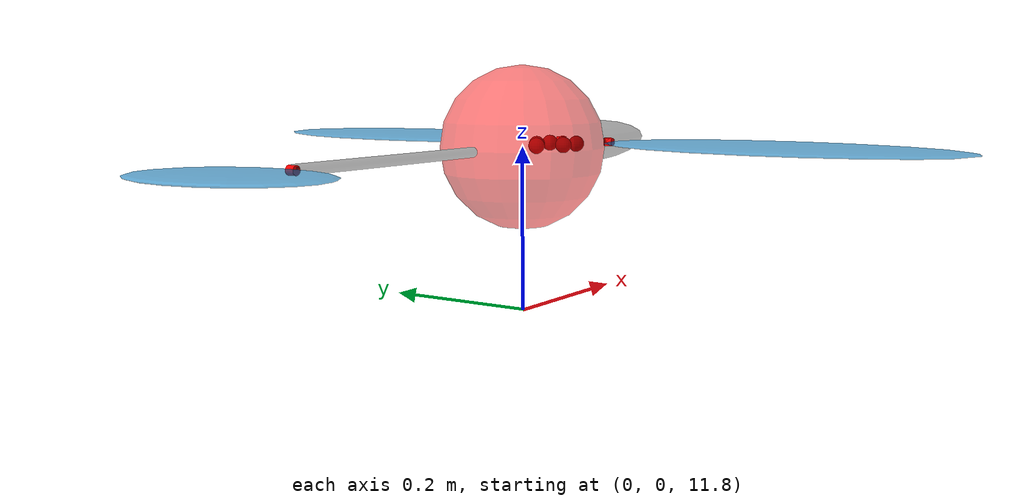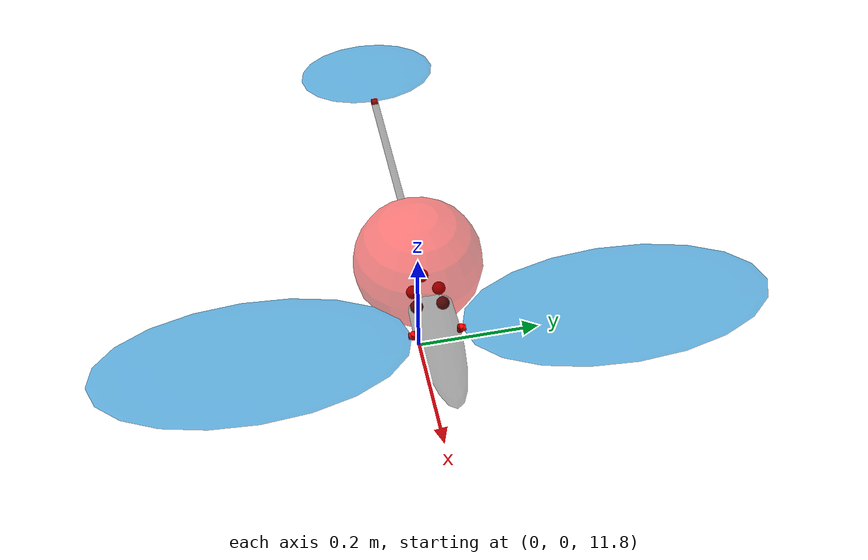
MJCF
<mujoco model="Ornithopter_UnB_Final">
    <compiler angle="degree" coordinate="local" inertiafromgeom="true"/>

    <statistic center="0 0 12" extent="2"/>

    <option timestep="0.001" integrator="RK4" gravity="0 0 -9.81" density="1.225" viscosity="0.000018">
        <flag energy="enable"/>
    </option>

    <asset>
        <material name="carbon_fiber" rgba="0.1 0.1 0.1 0.4"/>
        <material name="wing_mylar" rgba="0 0.5 0.8 0.6"/>
        <material name="joint_visual" rgba="1 0 0 1"/>
        <material name="motor_internal" rgba="0.5 0 0 1"/>
    </asset>

    <worldbody>
        <light diffuse=".5 .5 .5" pos="0 0 3" dir="0 0 -1"/>
        <geom type="plane" size="100 100 0.1" rgba=".9 .9 .9 1"/>

        <body name="target" mocap="true" pos="0 0 12">
            <geom type="sphere" size="0.1" rgba="1 0 0 0.5" contype="0" conaffinity="0"/>
        </body>

        <!-- CORPO PRINCIPAL -->
        <body name="torso" pos="0 0 12">
            <freejoint name="root"/>

            <!-- Fuselagem Principal (GeoGebra): 255g total, motores inclusos aqui -->
            <geom name="fuselagem" type="ellipsoid" fluidshape="ellipsoid" pos="0.12995 0 0" size="0.1565 0.035 0.028" mass="0.210" material="carbon_fiber"/>

            <!-- Massas dos Motores (9g cada) posicionadas internamente para ajuste de CG -->
            <geom name="m_flap_l_mass" type="sphere" pos="0.09 0.02 0" size="0.01" mass="0.009" material="motor_internal"/>
            <geom name="m_flap_r_mass" type="sphere" pos="0.09 -0.02 0" size="0.01" mass="0.009" material="motor_internal"/>
            <geom name="m_pitch_l_mass" type="sphere" pos="0.06 0.02 0" size="0.01" mass="0.009" material="motor_internal"/>
            <geom name="m_pitch_r_mass" type="sphere" pos="0.06 -0.02 0" size="0.01" mass="0.009" material="motor_internal"/>
            <geom name="m_tail_mass" type="sphere" pos="0.03 0 0" size="0.01" mass="0.009" material="motor_internal"/>

            <!-- Tubo de Cauda (4g) -->
            <geom name="tail_tube" type="cylinder" fromto="-0.02197 0 0 -0.37657 0 0" size="0.006" mass="0.004" material="carbon_fiber"/>

            <!-- ASA ESQUERDA -->
            <body name="asa_esq_flap" pos="0.14325 0.035 0">
                <joint name="q1_flap_esq" type="hinge" axis="1 0 0" range="-45 45" damping="0.1"/>
                <!-- Cilindro de placeholder para satisfazer mjMINVAL -->
                <geom type="cylinder" size="0.005 0.005" mass="0.0001" material="joint_visual"/>

                <body name="asa_esq_pitch" pos="0 0.00249 0">
                    <joint name="q2_pitch_esq" type="hinge" axis="0 1 0" range="-25 25" damping="0.05"/>
                    <geom type="cylinder" size="0.005 0.005" mass="0.0001" material="joint_visual" euler="90 0 0"/>

                    <body name="asa_esq">
                        <geom name="wing_l" type="ellipsoid" fluidshape="ellipsoid" pos="0 0.23625 0" size="0.1139 0.2362 0.005" mass="0.020" material="wing_mylar" fluidcoef="0.2 0.12 1.5 3.14 1.0"/>
                    </body>
                </body>
            </body>

            <!-- ASA DIREITA -->
            <body name="asa_dir_flap" pos="0.14325 -0.035 0">
                <joint name="q3_flap_dir" type="hinge" axis="1 0 0" range="-45 45" damping="0.1"/>
                <geom type="cylinder" size="0.005 0.005" mass="0.0001" material="joint_visual"/>

                <body name="asa_dir_pitch" pos="0 -0.00249 0">
                    <joint name="q4_pitch_dir" type="hinge" axis="0 1 0" range="-25 25" damping="0.05"/>
                    <geom type="cylinder" size="0.005 0.005" mass="0.0001" material="joint_visual" euler="90 0 0"/>

                    <body name="asa_dir">
                        <geom name="wing_r" type="ellipsoid" fluidshape="ellipsoid" pos="0 -0.23625 0" size="0.1139 0.2362 0.005" mass="0.020" material="wing_mylar" fluidcoef="0.2 0.12 1.5 3.14 1.0"/>
                    </body>
                </body>
            </body>

            <!-- CAUDA -->
            <body name="cauda_pitch" pos="-0.37657 0 0">
                <joint name="q5_pitch_tail" type="hinge" axis="0 1 0" range="-35 35" damping="0.1"/>
                <geom type="cylinder" size="0.005 0.005" mass="0.0001" material="joint_visual" euler="90 0 0"/>

                <body name="cauda">
                    <geom name="tail_geom" type="ellipsoid" fluidshape="ellipsoid" pos="-0.07553 0 0" size="0.07553 0.1133 0.005" mass="0.009" material="wing_mylar" fluidcoef="0.2 0.12 1.5 3.14 1.0"/>
                </body>
            </body>
        </body>
    </worldbody>

    <actuator>
        <position name="motor_q1" joint="q1_flap_esq" kp="10" ctrllimited="true" ctrlrange="-45 45"/>
        <position name="motor_q2" joint="q2_pitch_esq" kp="5" ctrllimited="true" ctrlrange="-25 25"/>
        <position name="motor_q3" joint="q3_flap_dir" kp="10" ctrllimited="true" ctrlrange="-45 45"/>
        <position name="motor_q4" joint="q4_pitch_dir" kp="5" ctrllimited="true" ctrlrange="-25 25"/>
        <position name="motor_q5" joint="q5_pitch_tail" kp="100" ctrllimited="true" ctrlrange="-35 35"/>
    </actuator>
</mujoco>
